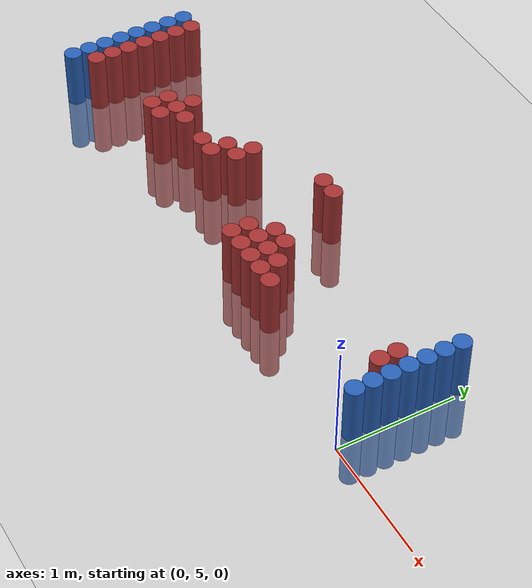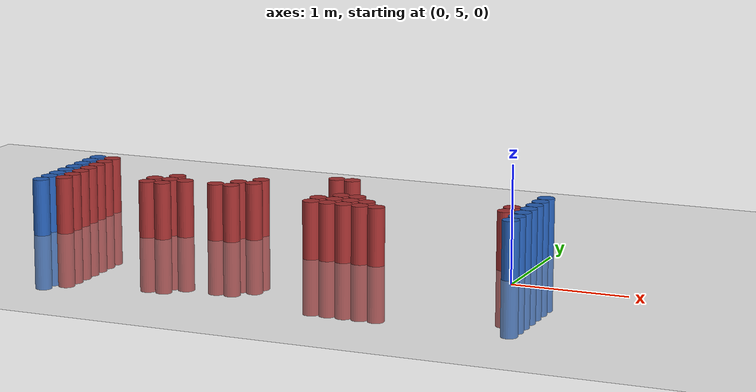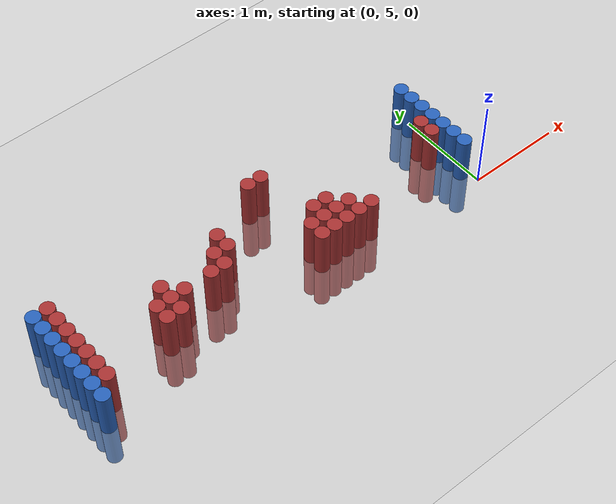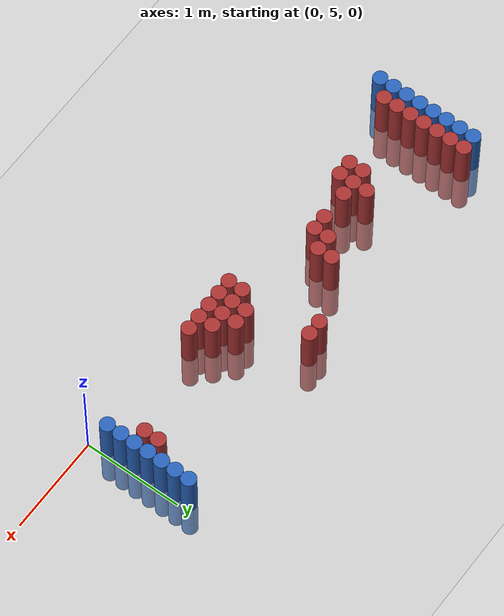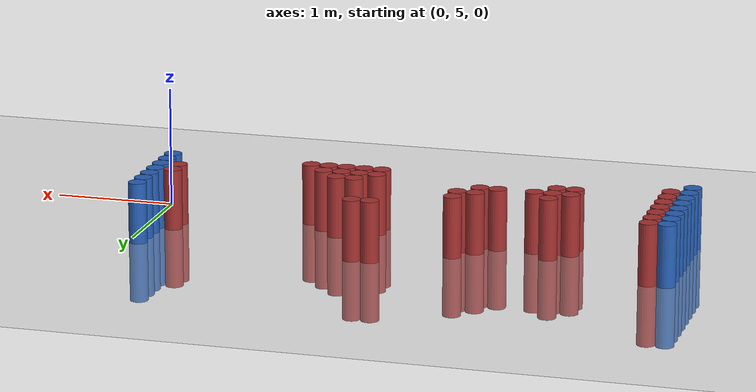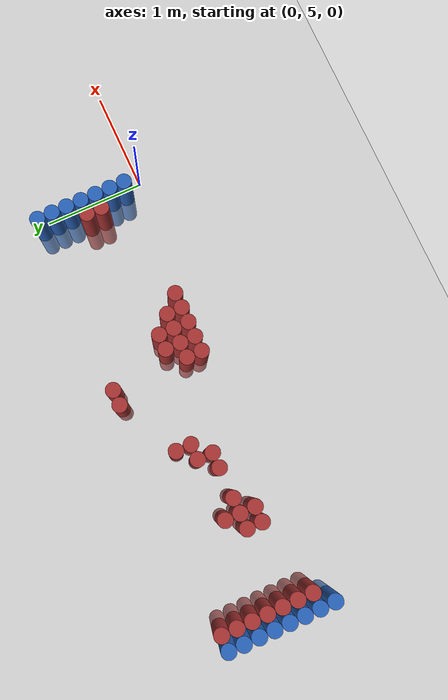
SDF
<sdf version="1.6">
 <world name="default">
  <model name="ground_plane">
   <static>1</static>
   <link name="link">
    <collision name="collision">
     <geometry><plane><normal>0 0 1</normal><size>100 100</size></plane></geometry>
     <surface><friction><ode><mu>100</mu><mu2>50</mu2></ode></friction></surface>
    </collision>
    <visual name="visual">
     <cast_shadows>0</cast_shadows>
     <geometry><plane><normal>0 0 1</normal><size>100 100</size></plane></geometry>
     <material>
      <script><uri>file://media/materials/scripts/gazebo.material</uri><name>Gazebo/Grey</name></script>
     </material>
    </visual>
   </link>
  </model>
  <model name="unit_cylinder_95">
   <static>1</static>
   <pose>-4.425000 5.025000 0.000000 0.000000 0.000000 0.000000</pose>
   <link name="link">
    <inertial>
     <mass>1</mass>
     <inertia><ixx>0.145833</ixx><ixy>0</ixy><ixz>0</ixz><iyy>0.145833</iyy><iyz>0</iyz><izz>0.125</izz></inertia>
    </inertial>
    <collision name="collision">
     <geometry><cylinder><radius>0.075000</radius><length>1</length></cylinder></geometry>
    </collision>
    <visual name="visual">
     <geometry><cylinder><radius>0.075000</radius><length>1</length></cylinder></geometry>
     <material>
      <ambient>0.152000 0.379000 0.720000 1</ambient>
      <diffuse>0.152000 0.379000 0.720000 1</diffuse>
     </material>
     <material>
      <script><name>Gazebo/Grey</name><uri>file://media/materials/scripts/gazebo.material</uri></script>
     </material>
    </visual>
   </link>
  </model>
  <model name="unit_cylinder_96">
   <static>1</static>
   <pose>-4.425000 5.175000 0.000000 0.000000 0.000000 0.000000</pose>
   <link name="link">
    <inertial>
     <mass>1</mass>
     <inertia><ixx>0.145833</ixx><ixy>0</ixy><ixz>0</ixz><iyy>0.145833</iyy><iyz>0</iyz><izz>0.125</izz></inertia>
    </inertial>
    <collision name="collision">
     <geometry><cylinder><radius>0.075000</radius><length>1</length></cylinder></geometry>
    </collision>
    <visual name="visual">
     <geometry><cylinder><radius>0.075000</radius><length>1</length></cylinder></geometry>
     <material>
      <ambient>0.152000 0.379000 0.720000 1</ambient>
      <diffuse>0.152000 0.379000 0.720000 1</diffuse>
     </material>
     <material>
      <script><name>Gazebo/Grey</name><uri>file://media/materials/scripts/gazebo.material</uri></script>
     </material>
    </visual>
   </link>
  </model>
  <model name="unit_cylinder_97">
   <static>1</static>
   <pose>-4.425000 5.325000 0.000000 0.000000 0.000000 0.000000</pose>
   <link name="link">
    <inertial>
     <mass>1</mass>
     <inertia><ixx>0.145833</ixx><ixy>0</ixy><ixz>0</ixz><iyy>0.145833</iyy><iyz>0</iyz><izz>0.125</izz></inertia>
    </inertial>
    <collision name="collision">
     <geometry><cylinder><radius>0.075000</radius><length>1</length></cylinder></geometry>
    </collision>
    <visual name="visual">
     <geometry><cylinder><radius>0.075000</radius><length>1</length></cylinder></geometry>
     <material>
      <ambient>0.152000 0.379000 0.720000 1</ambient>
      <diffuse>0.152000 0.379000 0.720000 1</diffuse>
     </material>
     <material>
      <script><name>Gazebo/Grey</name><uri>file://media/materials/scripts/gazebo.material</uri></script>
     </material>
    </visual>
   </link>
  </model>
  <model name="unit_cylinder_98">
   <static>1</static>
   <pose>-4.425000 5.475000 0.000000 0.000000 0.000000 0.000000</pose>
   <link name="link">
    <inertial>
     <mass>1</mass>
     <inertia><ixx>0.145833</ixx><ixy>0</ixy><ixz>0</ixz><iyy>0.145833</iyy><iyz>0</iyz><izz>0.125</izz></inertia>
    </inertial>
    <collision name="collision">
     <geometry><cylinder><radius>0.075000</radius><length>1</length></cylinder></geometry>
    </collision>
    <visual name="visual">
     <geometry><cylinder><radius>0.075000</radius><length>1</length></cylinder></geometry>
     <material>
      <ambient>0.152000 0.379000 0.720000 1</ambient>
      <diffuse>0.152000 0.379000 0.720000 1</diffuse>
     </material>
     <material>
      <script><name>Gazebo/Grey</name><uri>file://media/materials/scripts/gazebo.material</uri></script>
     </material>
    </visual>
   </link>
  </model>
  <model name="unit_cylinder_99">
   <static>1</static>
   <pose>-4.425000 5.625000 0.000000 0.000000 0.000000 0.000000</pose>
   <link name="link">
    <inertial>
     <mass>1</mass>
     <inertia><ixx>0.145833</ixx><ixy>0</ixy><ixz>0</ixz><iyy>0.145833</iyy><iyz>0</iyz><izz>0.125</izz></inertia>
    </inertial>
    <collision name="collision">
     <geometry><cylinder><radius>0.075000</radius><length>1</length></cylinder></geometry>
    </collision>
    <visual name="visual">
     <geometry><cylinder><radius>0.075000</radius><length>1</length></cylinder></geometry>
     <material>
      <ambient>0.152000 0.379000 0.720000 1</ambient>
      <diffuse>0.152000 0.379000 0.720000 1</diffuse>
     </material>
     <material>
      <script><name>Gazebo/Grey</name><uri>file://media/materials/scripts/gazebo.material</uri></script>
     </material>
    </visual>
   </link>
  </model>
  <model name="unit_cylinder_100">
   <static>1</static>
   <pose>-4.425000 5.775000 0.000000 0.000000 0.000000 0.000000</pose>
   <link name="link">
    <inertial>
     <mass>1</mass>
     <inertia><ixx>0.145833</ixx><ixy>0</ixy><ixz>0</ixz><iyy>0.145833</iyy><iyz>0</iyz><izz>0.125</izz></inertia>
    </inertial>
    <collision name="collision">
     <geometry><cylinder><radius>0.075000</radius><length>1</length></cylinder></geometry>
    </collision>
    <visual name="visual">
     <geometry><cylinder><radius>0.075000</radius><length>1</length></cylinder></geometry>
     <material>
      <ambient>0.152000 0.379000 0.720000 1</ambient>
      <diffuse>0.152000 0.379000 0.720000 1</diffuse>
     </material>
     <material>
      <script><name>Gazebo/Grey</name><uri>file://media/materials/scripts/gazebo.material</uri></script>
     </material>
    </visual>
   </link>
  </model>
  <model name="unit_cylinder_101">
   <static>1</static>
   <pose>-4.425000 5.925000 0.000000 0.000000 0.000000 0.000000</pose>
   <link name="link">
    <inertial>
     <mass>1</mass>
     <inertia><ixx>0.145833</ixx><ixy>0</ixy><ixz>0</ixz><iyy>0.145833</iyy><iyz>0</iyz><izz>0.125</izz></inertia>
    </inertial>
    <collision name="collision">
     <geometry><cylinder><radius>0.075000</radius><length>1</length></cylinder></geometry>
    </collision>
    <visual name="visual">
     <geometry><cylinder><radius>0.075000</radius><length>1</length></cylinder></geometry>
     <material>
      <ambient>0.152000 0.379000 0.720000 1</ambient>
      <diffuse>0.152000 0.379000 0.720000 1</diffuse>
     </material>
     <material>
      <script><name>Gazebo/Grey</name><uri>file://media/materials/scripts/gazebo.material</uri></script>
     </material>
    </visual>
   </link>
  </model>
  <model name="unit_cylinder_102">
   <static>1</static>
   <pose>-4.425000 6.075000 0.000000 0.000000 0.000000 0.000000</pose>
   <link name="link">
    <inertial>
     <mass>1</mass>
     <inertia><ixx>0.145833</ixx><ixy>0</ixy><ixz>0</ixz><iyy>0.145833</iyy><iyz>0</iyz><izz>0.125</izz></inertia>
    </inertial>
    <collision name="collision">
     <geometry><cylinder><radius>0.075000</radius><length>1</length></cylinder></geometry>
    </collision>
    <visual name="visual">
     <geometry><cylinder><radius>0.075000</radius><length>1</length></cylinder></geometry>
     <material>
      <ambient>0.152000 0.379000 0.720000 1</ambient>
      <diffuse>0.152000 0.379000 0.720000 1</diffuse>
     </material>
     <material>
      <script><name>Gazebo/Grey</name><uri>file://media/materials/scripts/gazebo.material</uri></script>
     </material>
    </visual>
   </link>
  </model>
  <model name="unit_cylinder_126">
   <static>1</static>
   <pose>-4.275000 5.175000 0.000000 0.000000 0.000000 0.000000</pose>
   <link name="link">
    <inertial>
     <mass>1</mass>
     <inertia><ixx>0.145833</ixx><ixy>0</ixy><ixz>0</ixz><iyy>0.145833</iyy><iyz>0</iyz><izz>0.125</izz></inertia>
    </inertial>
    <collision name="collision">
     <geometry><cylinder><radius>0.075000</radius><length>1</length></cylinder></geometry>
    </collision>
    <visual name="visual">
     <geometry><cylinder><radius>0.075000</radius><length>1</length></cylinder></geometry>
     <material>
      <ambient>0.648000 0.192000 0.192000 1</ambient>
      <diffuse>0.648000 0.192000 0.192000 1</diffuse>
     </material>
     <material>
      <script><name>Gazebo/Grey</name><uri>file://media/materials/scripts/gazebo.material</uri></script>
     </material>
    </visual>
   </link>
  </model>
  <model name="unit_cylinder_127">
   <static>1</static>
   <pose>-4.275000 5.325000 0.000000 0.000000 0.000000 0.000000</pose>
   <link name="link">
    <inertial>
     <mass>1</mass>
     <inertia><ixx>0.145833</ixx><ixy>0</ixy><ixz>0</ixz><iyy>0.145833</iyy><iyz>0</iyz><izz>0.125</izz></inertia>
    </inertial>
    <collision name="collision">
     <geometry><cylinder><radius>0.075000</radius><length>1</length></cylinder></geometry>
    </collision>
    <visual name="visual">
     <geometry><cylinder><radius>0.075000</radius><length>1</length></cylinder></geometry>
     <material>
      <ambient>0.648000 0.192000 0.192000 1</ambient>
      <diffuse>0.648000 0.192000 0.192000 1</diffuse>
     </material>
     <material>
      <script><name>Gazebo/Grey</name><uri>file://media/materials/scripts/gazebo.material</uri></script>
     </material>
    </visual>
   </link>
  </model>
  <model name="unit_cylinder_128">
   <static>1</static>
   <pose>-4.275000 5.475000 0.000000 0.000000 0.000000 0.000000</pose>
   <link name="link">
    <inertial>
     <mass>1</mass>
     <inertia><ixx>0.145833</ixx><ixy>0</ixy><ixz>0</ixz><iyy>0.145833</iyy><iyz>0</iyz><izz>0.125</izz></inertia>
    </inertial>
    <collision name="collision">
     <geometry><cylinder><radius>0.075000</radius><length>1</length></cylinder></geometry>
    </collision>
    <visual name="visual">
     <geometry><cylinder><radius>0.075000</radius><length>1</length></cylinder></geometry>
     <material>
      <ambient>0.648000 0.192000 0.192000 1</ambient>
      <diffuse>0.648000 0.192000 0.192000 1</diffuse>
     </material>
     <material>
      <script><name>Gazebo/Grey</name><uri>file://media/materials/scripts/gazebo.material</uri></script>
     </material>
    </visual>
   </link>
  </model>
  <model name="unit_cylinder_129">
   <static>1</static>
   <pose>-4.275000 5.625000 0.000000 0.000000 0.000000 0.000000</pose>
   <link name="link">
    <inertial>
     <mass>1</mass>
     <inertia><ixx>0.145833</ixx><ixy>0</ixy><ixz>0</ixz><iyy>0.145833</iyy><iyz>0</iyz><izz>0.125</izz></inertia>
    </inertial>
    <collision name="collision">
     <geometry><cylinder><radius>0.075000</radius><length>1</length></cylinder></geometry>
    </collision>
    <visual name="visual">
     <geometry><cylinder><radius>0.075000</radius><length>1</length></cylinder></geometry>
     <material>
      <ambient>0.648000 0.192000 0.192000 1</ambient>
      <diffuse>0.648000 0.192000 0.192000 1</diffuse>
     </material>
     <material>
      <script><name>Gazebo/Grey</name><uri>file://media/materials/scripts/gazebo.material</uri></script>
     </material>
    </visual>
   </link>
  </model>
  <model name="unit_cylinder_130">
   <static>1</static>
   <pose>-4.275000 5.775000 0.000000 0.000000 0.000000 0.000000</pose>
   <link name="link">
    <inertial>
     <mass>1</mass>
     <inertia><ixx>0.145833</ixx><ixy>0</ixy><ixz>0</ixz><iyy>0.145833</iyy><iyz>0</iyz><izz>0.125</izz></inertia>
    </inertial>
    <collision name="collision">
     <geometry><cylinder><radius>0.075000</radius><length>1</length></cylinder></geometry>
    </collision>
    <visual name="visual">
     <geometry><cylinder><radius>0.075000</radius><length>1</length></cylinder></geometry>
     <material>
      <ambient>0.648000 0.192000 0.192000 1</ambient>
      <diffuse>0.648000 0.192000 0.192000 1</diffuse>
     </material>
     <material>
      <script><name>Gazebo/Grey</name><uri>file://media/materials/scripts/gazebo.material</uri></script>
     </material>
    </visual>
   </link>
  </model>
  <model name="unit_cylinder_131">
   <static>1</static>
   <pose>-4.275000 5.925000 0.000000 0.000000 0.000000 0.000000</pose>
   <link name="link">
    <inertial>
     <mass>1</mass>
     <inertia><ixx>0.145833</ixx><ixy>0</ixy><ixz>0</ixz><iyy>0.145833</iyy><iyz>0</iyz><izz>0.125</izz></inertia>
    </inertial>
    <collision name="collision">
     <geometry><cylinder><radius>0.075000</radius><length>1</length></cylinder></geometry>
    </collision>
    <visual name="visual">
     <geometry><cylinder><radius>0.075000</radius><length>1</length></cylinder></geometry>
     <material>
      <ambient>0.648000 0.192000 0.192000 1</ambient>
      <diffuse>0.648000 0.192000 0.192000 1</diffuse>
     </material>
     <material>
      <script><name>Gazebo/Grey</name><uri>file://media/materials/scripts/gazebo.material</uri></script>
     </material>
    </visual>
   </link>
  </model>
  <model name="unit_cylinder_132">
   <static>1</static>
   <pose>-4.275000 6.075000 0.000000 0.000000 0.000000 0.000000</pose>
   <link name="link">
    <inertial>
     <mass>1</mass>
     <inertia><ixx>0.145833</ixx><ixy>0</ixy><ixz>0</ixz><iyy>0.145833</iyy><iyz>0</iyz><izz>0.125</izz></inertia>
    </inertial>
    <collision name="collision">
     <geometry><cylinder><radius>0.075000</radius><length>1</length></cylinder></geometry>
    </collision>
    <visual name="visual">
     <geometry><cylinder><radius>0.075000</radius><length>1</length></cylinder></geometry>
     <material>
      <ambient>0.648000 0.192000 0.192000 1</ambient>
      <diffuse>0.648000 0.192000 0.192000 1</diffuse>
     </material>
     <material>
      <script><name>Gazebo/Grey</name><uri>file://media/materials/scripts/gazebo.material</uri></script>
     </material>
    </visual>
   </link>
  </model>
  <model name="unit_cylinder_152">
   <static>1</static>
   <pose>-3.525000 5.325000 0.000000 0.000000 0.000000 0.000000</pose>
   <link name="link">
    <inertial>
     <mass>1</mass>
     <inertia><ixx>0.145833</ixx><ixy>0</ixy><ixz>0</ixz><iyy>0.145833</iyy><iyz>0</iyz><izz>0.125</izz></inertia>
    </inertial>
    <collision name="collision">
     <geometry><cylinder><radius>0.075000</radius><length>1</length></cylinder></geometry>
    </collision>
    <visual name="visual">
     <geometry><cylinder><radius>0.075000</radius><length>1</length></cylinder></geometry>
     <material>
      <ambient>0.648000 0.192000 0.192000 1</ambient>
      <diffuse>0.648000 0.192000 0.192000 1</diffuse>
     </material>
     <material>
      <script><name>Gazebo/Grey</name><uri>file://media/materials/scripts/gazebo.material</uri></script>
     </material>
    </visual>
   </link>
  </model>
  <model name="unit_cylinder_153">
   <static>1</static>
   <pose>-3.525000 5.475000 0.000000 0.000000 0.000000 0.000000</pose>
   <link name="link">
    <inertial>
     <mass>1</mass>
     <inertia><ixx>0.145833</ixx><ixy>0</ixy><ixz>0</ixz><iyy>0.145833</iyy><iyz>0</iyz><izz>0.125</izz></inertia>
    </inertial>
    <collision name="collision">
     <geometry><cylinder><radius>0.075000</radius><length>1</length></cylinder></geometry>
    </collision>
    <visual name="visual">
     <geometry><cylinder><radius>0.075000</radius><length>1</length></cylinder></geometry>
     <material>
      <ambient>0.648000 0.192000 0.192000 1</ambient>
      <diffuse>0.648000 0.192000 0.192000 1</diffuse>
     </material>
     <material>
      <script><name>Gazebo/Grey</name><uri>file://media/materials/scripts/gazebo.material</uri></script>
     </material>
    </visual>
   </link>
  </model>
  <model name="unit_cylinder_154">
   <static>1</static>
   <pose>-3.375000 5.325000 0.000000 0.000000 0.000000 0.000000</pose>
   <link name="link">
    <inertial>
     <mass>1</mass>
     <inertia><ixx>0.145833</ixx><ixy>0</ixy><ixz>0</ixz><iyy>0.145833</iyy><iyz>0</iyz><izz>0.125</izz></inertia>
    </inertial>
    <collision name="collision">
     <geometry><cylinder><radius>0.075000</radius><length>1</length></cylinder></geometry>
    </collision>
    <visual name="visual">
     <geometry><cylinder><radius>0.075000</radius><length>1</length></cylinder></geometry>
     <material>
      <ambient>0.648000 0.192000 0.192000 1</ambient>
      <diffuse>0.648000 0.192000 0.192000 1</diffuse>
     </material>
     <material>
      <script><name>Gazebo/Grey</name><uri>file://media/materials/scripts/gazebo.material</uri></script>
     </material>
    </visual>
   </link>
  </model>
  <model name="unit_cylinder_155">
   <static>1</static>
   <pose>-3.375000 5.475000 0.000000 0.000000 0.000000 0.000000</pose>
   <link name="link">
    <inertial>
     <mass>1</mass>
     <inertia><ixx>0.145833</ixx><ixy>0</ixy><ixz>0</ixz><iyy>0.145833</iyy><iyz>0</iyz><izz>0.125</izz></inertia>
    </inertial>
    <collision name="collision">
     <geometry><cylinder><radius>0.075000</radius><length>1</length></cylinder></geometry>
    </collision>
    <visual name="visual">
     <geometry><cylinder><radius>0.075000</radius><length>1</length></cylinder></geometry>
     <material>
      <ambient>0.648000 0.192000 0.192000 1</ambient>
      <diffuse>0.648000 0.192000 0.192000 1</diffuse>
     </material>
     <material>
      <script><name>Gazebo/Grey</name><uri>file://media/materials/scripts/gazebo.material</uri></script>
     </material>
    </visual>
   </link>
  </model>
  <model name="unit_cylinder_156">
   <static>1</static>
   <pose>-3.375000 5.625000 0.000000 0.000000 0.000000 0.000000</pose>
   <link name="link">
    <inertial>
     <mass>1</mass>
     <inertia><ixx>0.145833</ixx><ixy>0</ixy><ixz>0</ixz><iyy>0.145833</iyy><iyz>0</iyz><izz>0.125</izz></inertia>
    </inertial>
    <collision name="collision">
     <geometry><cylinder><radius>0.075000</radius><length>1</length></cylinder></geometry>
    </collision>
    <visual name="visual">
     <geometry><cylinder><radius>0.075000</radius><length>1</length></cylinder></geometry>
     <material>
      <ambient>0.648000 0.192000 0.192000 1</ambient>
      <diffuse>0.648000 0.192000 0.192000 1</diffuse>
     </material>
     <material>
      <script><name>Gazebo/Grey</name><uri>file://media/materials/scripts/gazebo.material</uri></script>
     </material>
    </visual>
   </link>
  </model>
  <model name="unit_cylinder_157">
   <static>1</static>
   <pose>-3.225000 5.475000 0.000000 0.000000 0.000000 0.000000</pose>
   <link name="link">
    <inertial>
     <mass>1</mass>
     <inertia><ixx>0.145833</ixx><ixy>0</ixy><ixz>0</ixz><iyy>0.145833</iyy><iyz>0</iyz><izz>0.125</izz></inertia>
    </inertial>
    <collision name="collision">
     <geometry><cylinder><radius>0.075000</radius><length>1</length></cylinder></geometry>
    </collision>
    <visual name="visual">
     <geometry><cylinder><radius>0.075000</radius><length>1</length></cylinder></geometry>
     <material>
      <ambient>0.648000 0.192000 0.192000 1</ambient>
      <diffuse>0.648000 0.192000 0.192000 1</diffuse>
     </material>
     <material>
      <script><name>Gazebo/Grey</name><uri>file://media/materials/scripts/gazebo.material</uri></script>
     </material>
    </visual>
   </link>
  </model>
  <model name="unit_cylinder_160">
   <static>1</static>
   <pose>-2.925000 5.475000 0.000000 0.000000 0.000000 0.000000</pose>
   <link name="link">
    <inertial>
     <mass>1</mass>
     <inertia><ixx>0.145833</ixx><ixy>0</ixy><ixz>0</ixz><iyy>0.145833</iyy><iyz>0</iyz><izz>0.125</izz></inertia>
    </inertial>
    <collision name="collision">
     <geometry><cylinder><radius>0.075000</radius><length>1</length></cylinder></geometry>
    </collision>
    <visual name="visual">
     <geometry><cylinder><radius>0.075000</radius><length>1</length></cylinder></geometry>
     <material>
      <ambient>0.648000 0.192000 0.192000 1</ambient>
      <diffuse>0.648000 0.192000 0.192000 1</diffuse>
     </material>
     <material>
      <script><name>Gazebo/Grey</name><uri>file://media/materials/scripts/gazebo.material</uri></script>
     </material>
    </visual>
   </link>
  </model>
  <model name="unit_cylinder_166">
   <static>1</static>
   <pose>-2.775000 5.475000 0.000000 0.000000 0.000000 0.000000</pose>
   <link name="link">
    <inertial>
     <mass>1</mass>
     <inertia><ixx>0.145833</ixx><ixy>0</ixy><ixz>0</ixz><iyy>0.145833</iyy><iyz>0</iyz><izz>0.125</izz></inertia>
    </inertial>
    <collision name="collision">
     <geometry><cylinder><radius>0.075000</radius><length>1</length></cylinder></geometry>
    </collision>
    <visual name="visual">
     <geometry><cylinder><radius>0.075000</radius><length>1</length></cylinder></geometry>
     <material>
      <ambient>0.648000 0.192000 0.192000 1</ambient>
      <diffuse>0.648000 0.192000 0.192000 1</diffuse>
     </material>
     <material>
      <script><name>Gazebo/Grey</name><uri>file://media/materials/scripts/gazebo.material</uri></script>
     </material>
    </visual>
   </link>
  </model>
  <model name="unit_cylinder_167">
   <static>1</static>
   <pose>-2.775000 5.625000 0.000000 0.000000 0.000000 0.000000</pose>
   <link name="link">
    <inertial>
     <mass>1</mass>
     <inertia><ixx>0.145833</ixx><ixy>0</ixy><ixz>0</ixz><iyy>0.145833</iyy><iyz>0</iyz><izz>0.125</izz></inertia>
    </inertial>
    <collision name="collision">
     <geometry><cylinder><radius>0.075000</radius><length>1</length></cylinder></geometry>
    </collision>
    <visual name="visual">
     <geometry><cylinder><radius>0.075000</radius><length>1</length></cylinder></geometry>
     <material>
      <ambient>0.648000 0.192000 0.192000 1</ambient>
      <diffuse>0.648000 0.192000 0.192000 1</diffuse>
     </material>
     <material>
      <script><name>Gazebo/Grey</name><uri>file://media/materials/scripts/gazebo.material</uri></script>
     </material>
    </visual>
   </link>
  </model>
  <model name="unit_cylinder_173">
   <static>1</static>
   <pose>-2.625000 5.625000 0.000000 0.000000 0.000000 0.000000</pose>
   <link name="link">
    <inertial>
     <mass>1</mass>
     <inertia><ixx>0.145833</ixx><ixy>0</ixy><ixz>0</ixz><iyy>0.145833</iyy><iyz>0</iyz><izz>0.125</izz></inertia>
    </inertial>
    <collision name="collision">
     <geometry><cylinder><radius>0.075000</radius><length>1</length></cylinder></geometry>
    </collision>
    <visual name="visual">
     <geometry><cylinder><radius>0.075000</radius><length>1</length></cylinder></geometry>
     <material>
      <ambient>0.648000 0.192000 0.192000 1</ambient>
      <diffuse>0.648000 0.192000 0.192000 1</diffuse>
     </material>
     <material>
      <script><name>Gazebo/Grey</name><uri>file://media/materials/scripts/gazebo.material</uri></script>
     </material>
    </visual>
   </link>
  </model>
  <model name="unit_cylinder_174">
   <static>1</static>
   <pose>-2.625000 5.775000 0.000000 0.000000 0.000000 0.000000</pose>
   <link name="link">
    <inertial>
     <mass>1</mass>
     <inertia><ixx>0.145833</ixx><ixy>0</ixy><ixz>0</ixz><iyy>0.145833</iyy><iyz>0</iyz><izz>0.125</izz></inertia>
    </inertial>
    <collision name="collision">
     <geometry><cylinder><radius>0.075000</radius><length>1</length></cylinder></geometry>
    </collision>
    <visual name="visual">
     <geometry><cylinder><radius>0.075000</radius><length>1</length></cylinder></geometry>
     <material>
      <ambient>0.648000 0.192000 0.192000 1</ambient>
      <diffuse>0.648000 0.192000 0.192000 1</diffuse>
     </material>
     <material>
      <script><name>Gazebo/Grey</name><uri>file://media/materials/scripts/gazebo.material</uri></script>
     </material>
    </visual>
   </link>
  </model>
  <model name="unit_cylinder_199">
   <static>1</static>
   <pose>-2.025000 6.075000 0.000000 0.000000 0.000000 0.000000</pose>
   <link name="link">
    <inertial>
     <mass>1</mass>
     <inertia><ixx>0.145833</ixx><ixy>0</ixy><ixz>0</ixz><iyy>0.145833</iyy><iyz>0</iyz><izz>0.125</izz></inertia>
    </inertial>
    <collision name="collision">
     <geometry><cylinder><radius>0.075000</radius><length>1</length></cylinder></geometry>
    </collision>
    <visual name="visual">
     <geometry><cylinder><radius>0.075000</radius><length>1</length></cylinder></geometry>
     <material>
      <ambient>0.648000 0.192000 0.192000 1</ambient>
      <diffuse>0.648000 0.192000 0.192000 1</diffuse>
     </material>
     <material>
      <script><name>Gazebo/Grey</name><uri>file://media/materials/scripts/gazebo.material</uri></script>
     </material>
    </visual>
   </link>
  </model>
  <model name="unit_cylinder_209">
   <static>1</static>
   <pose>-1.875000 5.175000 0.000000 0.000000 0.000000 0.000000</pose>
   <link name="link">
    <inertial>
     <mass>1</mass>
     <inertia><ixx>0.145833</ixx><ixy>0</ixy><ixz>0</ixz><iyy>0.145833</iyy><iyz>0</iyz><izz>0.125</izz></inertia>
    </inertial>
    <collision name="collision">
     <geometry><cylinder><radius>0.075000</radius><length>1</length></cylinder></geometry>
    </collision>
    <visual name="visual">
     <geometry><cylinder><radius>0.075000</radius><length>1</length></cylinder></geometry>
     <material>
      <ambient>0.648000 0.192000 0.192000 1</ambient>
      <diffuse>0.648000 0.192000 0.192000 1</diffuse>
     </material>
     <material>
      <script><name>Gazebo/Grey</name><uri>file://media/materials/scripts/gazebo.material</uri></script>
     </material>
    </visual>
   </link>
  </model>
  <model name="unit_cylinder_210">
   <static>1</static>
   <pose>-1.875000 5.325000 0.000000 0.000000 0.000000 0.000000</pose>
   <link name="link">
    <inertial>
     <mass>1</mass>
     <inertia><ixx>0.145833</ixx><ixy>0</ixy><ixz>0</ixz><iyy>0.145833</iyy><iyz>0</iyz><izz>0.125</izz></inertia>
    </inertial>
    <collision name="collision">
     <geometry><cylinder><radius>0.075000</radius><length>1</length></cylinder></geometry>
    </collision>
    <visual name="visual">
     <geometry><cylinder><radius>0.075000</radius><length>1</length></cylinder></geometry>
     <material>
      <ambient>0.648000 0.192000 0.192000 1</ambient>
      <diffuse>0.648000 0.192000 0.192000 1</diffuse>
     </material>
     <material>
      <script><name>Gazebo/Grey</name><uri>file://media/materials/scripts/gazebo.material</uri></script>
     </material>
    </visual>
   </link>
  </model>
  <model name="unit_cylinder_211">
   <static>1</static>
   <pose>-1.875000 6.075000 0.000000 0.000000 0.000000 0.000000</pose>
   <link name="link">
    <inertial>
     <mass>1</mass>
     <inertia><ixx>0.145833</ixx><ixy>0</ixy><ixz>0</ixz><iyy>0.145833</iyy><iyz>0</iyz><izz>0.125</izz></inertia>
    </inertial>
    <collision name="collision">
     <geometry><cylinder><radius>0.075000</radius><length>1</length></cylinder></geometry>
    </collision>
    <visual name="visual">
     <geometry><cylinder><radius>0.075000</radius><length>1</length></cylinder></geometry>
     <material>
      <ambient>0.648000 0.192000 0.192000 1</ambient>
      <diffuse>0.648000 0.192000 0.192000 1</diffuse>
     </material>
     <material>
      <script><name>Gazebo/Grey</name><uri>file://media/materials/scripts/gazebo.material</uri></script>
     </material>
    </visual>
   </link>
  </model>
  <model name="unit_cylinder_221">
   <static>1</static>
   <pose>-1.725000 5.175000 0.000000 0.000000 0.000000 0.000000</pose>
   <link name="link">
    <inertial>
     <mass>1</mass>
     <inertia><ixx>0.145833</ixx><ixy>0</ixy><ixz>0</ixz><iyy>0.145833</iyy><iyz>0</iyz><izz>0.125</izz></inertia>
    </inertial>
    <collision name="collision">
     <geometry><cylinder><radius>0.075000</radius><length>1</length></cylinder></geometry>
    </collision>
    <visual name="visual">
     <geometry><cylinder><radius>0.075000</radius><length>1</length></cylinder></geometry>
     <material>
      <ambient>0.648000 0.192000 0.192000 1</ambient>
      <diffuse>0.648000 0.192000 0.192000 1</diffuse>
     </material>
     <material>
      <script><name>Gazebo/Grey</name><uri>file://media/materials/scripts/gazebo.material</uri></script>
     </material>
    </visual>
   </link>
  </model>
  <model name="unit_cylinder_222">
   <static>1</static>
   <pose>-1.725000 5.325000 0.000000 0.000000 0.000000 0.000000</pose>
   <link name="link">
    <inertial>
     <mass>1</mass>
     <inertia><ixx>0.145833</ixx><ixy>0</ixy><ixz>0</ixz><iyy>0.145833</iyy><iyz>0</iyz><izz>0.125</izz></inertia>
    </inertial>
    <collision name="collision">
     <geometry><cylinder><radius>0.075000</radius><length>1</length></cylinder></geometry>
    </collision>
    <visual name="visual">
     <geometry><cylinder><radius>0.075000</radius><length>1</length></cylinder></geometry>
     <material>
      <ambient>0.648000 0.192000 0.192000 1</ambient>
      <diffuse>0.648000 0.192000 0.192000 1</diffuse>
     </material>
     <material>
      <script><name>Gazebo/Grey</name><uri>file://media/materials/scripts/gazebo.material</uri></script>
     </material>
    </visual>
   </link>
  </model>
  <model name="unit_cylinder_223">
   <static>1</static>
   <pose>-1.725000 5.475000 0.000000 0.000000 0.000000 0.000000</pose>
   <link name="link">
    <inertial>
     <mass>1</mass>
     <inertia><ixx>0.145833</ixx><ixy>0</ixy><ixz>0</ixz><iyy>0.145833</iyy><iyz>0</iyz><izz>0.125</izz></inertia>
    </inertial>
    <collision name="collision">
     <geometry><cylinder><radius>0.075000</radius><length>1</length></cylinder></geometry>
    </collision>
    <visual name="visual">
     <geometry><cylinder><radius>0.075000</radius><length>1</length></cylinder></geometry>
     <material>
      <ambient>0.648000 0.192000 0.192000 1</ambient>
      <diffuse>0.648000 0.192000 0.192000 1</diffuse>
     </material>
     <material>
      <script><name>Gazebo/Grey</name><uri>file://media/materials/scripts/gazebo.material</uri></script>
     </material>
    </visual>
   </link>
  </model>
  <model name="unit_cylinder_230">
   <static>1</static>
   <pose>-1.575000 5.175000 0.000000 0.000000 0.000000 0.000000</pose>
   <link name="link">
    <inertial>
     <mass>1</mass>
     <inertia><ixx>0.145833</ixx><ixy>0</ixy><ixz>0</ixz><iyy>0.145833</iyy><iyz>0</iyz><izz>0.125</izz></inertia>
    </inertial>
    <collision name="collision">
     <geometry><cylinder><radius>0.075000</radius><length>1</length></cylinder></geometry>
    </collision>
    <visual name="visual">
     <geometry><cylinder><radius>0.075000</radius><length>1</length></cylinder></geometry>
     <material>
      <ambient>0.648000 0.192000 0.192000 1</ambient>
      <diffuse>0.648000 0.192000 0.192000 1</diffuse>
     </material>
     <material>
      <script><name>Gazebo/Grey</name><uri>file://media/materials/scripts/gazebo.material</uri></script>
     </material>
    </visual>
   </link>
  </model>
  <model name="unit_cylinder_231">
   <static>1</static>
   <pose>-1.575000 5.325000 0.000000 0.000000 0.000000 0.000000</pose>
   <link name="link">
    <inertial>
     <mass>1</mass>
     <inertia><ixx>0.145833</ixx><ixy>0</ixy><ixz>0</ixz><iyy>0.145833</iyy><iyz>0</iyz><izz>0.125</izz></inertia>
    </inertial>
    <collision name="collision">
     <geometry><cylinder><radius>0.075000</radius><length>1</length></cylinder></geometry>
    </collision>
    <visual name="visual">
     <geometry><cylinder><radius>0.075000</radius><length>1</length></cylinder></geometry>
     <material>
      <ambient>0.648000 0.192000 0.192000 1</ambient>
      <diffuse>0.648000 0.192000 0.192000 1</diffuse>
     </material>
     <material>
      <script><name>Gazebo/Grey</name><uri>file://media/materials/scripts/gazebo.material</uri></script>
     </material>
    </visual>
   </link>
  </model>
  <model name="unit_cylinder_232">
   <static>1</static>
   <pose>-1.575000 5.475000 0.000000 0.000000 0.000000 0.000000</pose>
   <link name="link">
    <inertial>
     <mass>1</mass>
     <inertia><ixx>0.145833</ixx><ixy>0</ixy><ixz>0</ixz><iyy>0.145833</iyy><iyz>0</iyz><izz>0.125</izz></inertia>
    </inertial>
    <collision name="collision">
     <geometry><cylinder><radius>0.075000</radius><length>1</length></cylinder></geometry>
    </collision>
    <visual name="visual">
     <geometry><cylinder><radius>0.075000</radius><length>1</length></cylinder></geometry>
     <material>
      <ambient>0.648000 0.192000 0.192000 1</ambient>
      <diffuse>0.648000 0.192000 0.192000 1</diffuse>
     </material>
     <material>
      <script><name>Gazebo/Grey</name><uri>file://media/materials/scripts/gazebo.material</uri></script>
     </material>
    </visual>
   </link>
  </model>
  <model name="unit_cylinder_234">
   <static>1</static>
   <pose>-1.425000 5.175000 0.000000 0.000000 0.000000 0.000000</pose>
   <link name="link">
    <inertial>
     <mass>1</mass>
     <inertia><ixx>0.145833</ixx><ixy>0</ixy><ixz>0</ixz><iyy>0.145833</iyy><iyz>0</iyz><izz>0.125</izz></inertia>
    </inertial>
    <collision name="collision">
     <geometry><cylinder><radius>0.075000</radius><length>1</length></cylinder></geometry>
    </collision>
    <visual name="visual">
     <geometry><cylinder><radius>0.075000</radius><length>1</length></cylinder></geometry>
     <material>
      <ambient>0.648000 0.192000 0.192000 1</ambient>
      <diffuse>0.648000 0.192000 0.192000 1</diffuse>
     </material>
     <material>
      <script><name>Gazebo/Grey</name><uri>file://media/materials/scripts/gazebo.material</uri></script>
     </material>
    </visual>
   </link>
  </model>
  <model name="unit_cylinder_235">
   <static>1</static>
   <pose>-1.425000 5.325000 0.000000 0.000000 0.000000 0.000000</pose>
   <link name="link">
    <inertial>
     <mass>1</mass>
     <inertia><ixx>0.145833</ixx><ixy>0</ixy><ixz>0</ixz><iyy>0.145833</iyy><iyz>0</iyz><izz>0.125</izz></inertia>
    </inertial>
    <collision name="collision">
     <geometry><cylinder><radius>0.075000</radius><length>1</length></cylinder></geometry>
    </collision>
    <visual name="visual">
     <geometry><cylinder><radius>0.075000</radius><length>1</length></cylinder></geometry>
     <material>
      <ambient>0.648000 0.192000 0.192000 1</ambient>
      <diffuse>0.648000 0.192000 0.192000 1</diffuse>
     </material>
     <material>
      <script><name>Gazebo/Grey</name><uri>file://media/materials/scripts/gazebo.material</uri></script>
     </material>
    </visual>
   </link>
  </model>
  <model name="unit_cylinder_236">
   <static>1</static>
   <pose>-1.275000 5.175000 0.000000 0.000000 0.000000 0.000000</pose>
   <link name="link">
    <inertial>
     <mass>1</mass>
     <inertia><ixx>0.145833</ixx><ixy>0</ixy><ixz>0</ixz><iyy>0.145833</iyy><iyz>0</iyz><izz>0.125</izz></inertia>
    </inertial>
    <collision name="collision">
     <geometry><cylinder><radius>0.075000</radius><length>1</length></cylinder></geometry>
    </collision>
    <visual name="visual">
     <geometry><cylinder><radius>0.075000</radius><length>1</length></cylinder></geometry>
     <material>
      <ambient>0.648000 0.192000 0.192000 1</ambient>
      <diffuse>0.648000 0.192000 0.192000 1</diffuse>
     </material>
     <material>
      <script><name>Gazebo/Grey</name><uri>file://media/materials/scripts/gazebo.material</uri></script>
     </material>
    </visual>
   </link>
  </model>
  <model name="unit_cylinder_242">
   <static>1</static>
   <pose>-0.225000 5.475000 0.000000 0.000000 0.000000 0.000000</pose>
   <link name="link">
    <inertial>
     <mass>1</mass>
     <inertia><ixx>0.145833</ixx><ixy>0</ixy><ixz>0</ixz><iyy>0.145833</iyy><iyz>0</iyz><izz>0.125</izz></inertia>
    </inertial>
    <collision name="collision">
     <geometry><cylinder><radius>0.075000</radius><length>1</length></cylinder></geometry>
    </collision>
    <visual name="visual">
     <geometry><cylinder><radius>0.075000</radius><length>1</length></cylinder></geometry>
     <material>
      <ambient>0.648000 0.192000 0.192000 1</ambient>
      <diffuse>0.648000 0.192000 0.192000 1</diffuse>
     </material>
     <material>
      <script><name>Gazebo/Grey</name><uri>file://media/materials/scripts/gazebo.material</uri></script>
     </material>
    </visual>
   </link>
  </model>
  <model name="unit_cylinder_243">
   <static>1</static>
   <pose>-0.225000 5.625000 0.000000 0.000000 0.000000 0.000000</pose>
   <link name="link">
    <inertial>
     <mass>1</mass>
     <inertia><ixx>0.145833</ixx><ixy>0</ixy><ixz>0</ixz><iyy>0.145833</iyy><iyz>0</iyz><izz>0.125</izz></inertia>
    </inertial>
    <collision name="collision">
     <geometry><cylinder><radius>0.075000</radius><length>1</length></cylinder></geometry>
    </collision>
    <visual name="visual">
     <geometry><cylinder><radius>0.075000</radius><length>1</length></cylinder></geometry>
     <material>
      <ambient>0.648000 0.192000 0.192000 1</ambient>
      <diffuse>0.648000 0.192000 0.192000 1</diffuse>
     </material>
     <material>
      <script><name>Gazebo/Grey</name><uri>file://media/materials/scripts/gazebo.material</uri></script>
     </material>
    </visual>
   </link>
  </model>
  <model name="unit_cylinder_256">
   <static>1</static>
   <pose>-0.075000 5.175000 0.000000 0.000000 0.000000 0.000000</pose>
   <link name="link">
    <inertial>
     <mass>1</mass>
     <inertia><ixx>0.145833</ixx><ixy>0</ixy><ixz>0</ixz><iyy>0.145833</iyy><iyz>0</iyz><izz>0.125</izz></inertia>
    </inertial>
    <collision name="collision">
     <geometry><cylinder><radius>0.075000</radius><length>1</length></cylinder></geometry>
    </collision>
    <visual name="visual">
     <geometry><cylinder><radius>0.075000</radius><length>1</length></cylinder></geometry>
     <material>
      <ambient>0.152000 0.379000 0.720000 1</ambient>
      <diffuse>0.152000 0.379000 0.720000 1</diffuse>
     </material>
     <material>
      <script><name>Gazebo/Grey</name><uri>file://media/materials/scripts/gazebo.material</uri></script>
     </material>
    </visual>
   </link>
  </model>
  <model name="unit_cylinder_257">
   <static>1</static>
   <pose>-0.075000 5.325000 0.000000 0.000000 0.000000 0.000000</pose>
   <link name="link">
    <inertial>
     <mass>1</mass>
     <inertia><ixx>0.145833</ixx><ixy>0</ixy><ixz>0</ixz><iyy>0.145833</iyy><iyz>0</iyz><izz>0.125</izz></inertia>
    </inertial>
    <collision name="collision">
     <geometry><cylinder><radius>0.075000</radius><length>1</length></cylinder></geometry>
    </collision>
    <visual name="visual">
     <geometry><cylinder><radius>0.075000</radius><length>1</length></cylinder></geometry>
     <material>
      <ambient>0.152000 0.379000 0.720000 1</ambient>
      <diffuse>0.152000 0.379000 0.720000 1</diffuse>
     </material>
     <material>
      <script><name>Gazebo/Grey</name><uri>file://media/materials/scripts/gazebo.material</uri></script>
     </material>
    </visual>
   </link>
  </model>
  <model name="unit_cylinder_258">
   <static>1</static>
   <pose>-0.075000 5.475000 0.000000 0.000000 0.000000 0.000000</pose>
   <link name="link">
    <inertial>
     <mass>1</mass>
     <inertia><ixx>0.145833</ixx><ixy>0</ixy><ixz>0</ixz><iyy>0.145833</iyy><iyz>0</iyz><izz>0.125</izz></inertia>
    </inertial>
    <collision name="collision">
     <geometry><cylinder><radius>0.075000</radius><length>1</length></cylinder></geometry>
    </collision>
    <visual name="visual">
     <geometry><cylinder><radius>0.075000</radius><length>1</length></cylinder></geometry>
     <material>
      <ambient>0.152000 0.379000 0.720000 1</ambient>
      <diffuse>0.152000 0.379000 0.720000 1</diffuse>
     </material>
     <material>
      <script><name>Gazebo/Grey</name><uri>file://media/materials/scripts/gazebo.material</uri></script>
     </material>
    </visual>
   </link>
  </model>
  <model name="unit_cylinder_259">
   <static>1</static>
   <pose>-0.075000 5.625000 0.000000 0.000000 0.000000 0.000000</pose>
   <link name="link">
    <inertial>
     <mass>1</mass>
     <inertia><ixx>0.145833</ixx><ixy>0</ixy><ixz>0</ixz><iyy>0.145833</iyy><iyz>0</iyz><izz>0.125</izz></inertia>
    </inertial>
    <collision name="collision">
     <geometry><cylinder><radius>0.075000</radius><length>1</length></cylinder></geometry>
    </collision>
    <visual name="visual">
     <geometry><cylinder><radius>0.075000</radius><length>1</length></cylinder></geometry>
     <material>
      <ambient>0.152000 0.379000 0.720000 1</ambient>
      <diffuse>0.152000 0.379000 0.720000 1</diffuse>
     </material>
     <material>
      <script><name>Gazebo/Grey</name><uri>file://media/materials/scripts/gazebo.material</uri></script>
     </material>
    </visual>
   </link>
  </model>
  <model name="unit_cylinder_260">
   <static>1</static>
   <pose>-0.075000 5.775000 0.000000 0.000000 0.000000 0.000000</pose>
   <link name="link">
    <inertial>
     <mass>1</mass>
     <inertia><ixx>0.145833</ixx><ixy>0</ixy><ixz>0</ixz><iyy>0.145833</iyy><iyz>0</iyz><izz>0.125</izz></inertia>
    </inertial>
    <collision name="collision">
     <geometry><cylinder><radius>0.075000</radius><length>1</length></cylinder></geometry>
    </collision>
    <visual name="visual">
     <geometry><cylinder><radius>0.075000</radius><length>1</length></cylinder></geometry>
     <material>
      <ambient>0.152000 0.379000 0.720000 1</ambient>
      <diffuse>0.152000 0.379000 0.720000 1</diffuse>
     </material>
     <material>
      <script><name>Gazebo/Grey</name><uri>file://media/materials/scripts/gazebo.material</uri></script>
     </material>
    </visual>
   </link>
  </model>
  <model name="unit_cylinder_261">
   <static>1</static>
   <pose>-0.075000 5.925000 0.000000 0.000000 0.000000 0.000000</pose>
   <link name="link">
    <inertial>
     <mass>1</mass>
     <inertia><ixx>0.145833</ixx><ixy>0</ixy><ixz>0</ixz><iyy>0.145833</iyy><iyz>0</iyz><izz>0.125</izz></inertia>
    </inertial>
    <collision name="collision">
     <geometry><cylinder><radius>0.075000</radius><length>1</length></cylinder></geometry>
    </collision>
    <visual name="visual">
     <geometry><cylinder><radius>0.075000</radius><length>1</length></cylinder></geometry>
     <material>
      <ambient>0.152000 0.379000 0.720000 1</ambient>
      <diffuse>0.152000 0.379000 0.720000 1</diffuse>
     </material>
     <material>
      <script><name>Gazebo/Grey</name><uri>file://media/materials/scripts/gazebo.material</uri></script>
     </material>
    </visual>
   </link>
  </model>
  <model name="unit_cylinder_262">
   <static>1</static>
   <pose>-0.075000 6.075000 0.000000 0.000000 0.000000 0.000000</pose>
   <link name="link">
    <inertial>
     <mass>1</mass>
     <inertia><ixx>0.145833</ixx><ixy>0</ixy><ixz>0</ixz><iyy>0.145833</iyy><iyz>0</iyz><izz>0.125</izz></inertia>
    </inertial>
    <collision name="collision">
     <geometry><cylinder><radius>0.075000</radius><length>1</length></cylinder></geometry>
    </collision>
    <visual name="visual">
     <geometry><cylinder><radius>0.075000</radius><length>1</length></cylinder></geometry>
     <material>
      <ambient>0.152000 0.379000 0.720000 1</ambient>
      <diffuse>0.152000 0.379000 0.720000 1</diffuse>
     </material>
     <material>
      <script><name>Gazebo/Grey</name><uri>file://media/materials/scripts/gazebo.material</uri></script>
     </material>
    </visual>
   </link>
  </model>
 </world>
</sdf>
